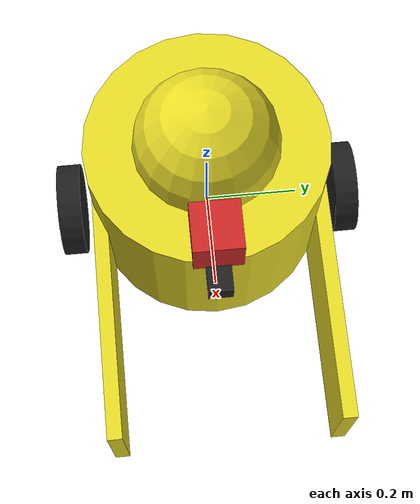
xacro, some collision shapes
<?xml version='1.0'?>

<robot name="robo" xmlns:xacro="http://www.ros.org/wiki/xacro">

  <xacro:include filename="$(find my_robot_urdf)/urdf/robo.gazebo" />

  <gazebo reference="left_wheel">
    <material>Gazebo/Black</material>
  </gazebo>

  <gazebo reference="right_wheel">
    <material>Gazebo/Black</material>
  </gazebo>

  <gazebo reference="camera">
    <material>Gazebo/Black</material>
  </gazebo>

  <gazebo reference="hokuyo">
    <material>Gazebo/Red</material>
  </gazebo>

  <gazebo reference="head">
    <material>Gazebo/Yellow</material>
  </gazebo>

  <gazebo reference="leftarm">
    <material>Gazebo/Grey</material>
  </gazebo>

  <gazebo reference="rightarm">
    <material>Gazebo/Grey</material>
  </gazebo>

  <gazebo reference="chassis">
    <material>Gazebo/Yellow</material>
  </gazebo>
  <link name="robot_footprint"></link>

  <joint name="robot_footprint_joint" type="fixed">
    <origin xyz="0 0 0" rpy="0 0 0" />
    <parent link="robot_footprint"/>
    <child link="chassis" />
  </joint>

  <joint name="camera_joint" type="fixed">
    <origin xyz="0.26 0 0.1" rpy="0 0 0" />
    <parent link="chassis"/>
    <child link="camera" />
    <axis xyz="0 1 0"/>
  </joint>

  <joint name="hokuyo_joint" type="fixed">
    <origin xyz="0.2 0 0.2" rpy="0 0 0" />
    <parent link="chassis"/>
    <child link="hokuyo" />
    <axis xyz="0 1 0"/>
  </joint>

  <joint type="continuous" name="left_wheel_hinge">
    <origin xyz="0 0.30 0" rpy="0 0 0" />
    <parent link="chassis"/>
    <child link="left_wheel" />
    <axis xyz="0 1 0" rpy="0 0 0" />
    <limit effort="10000" velocity="1000" />
    <dynamics damping="1.0" friction="1.0" />
  </joint>

  <joint type="continuous" name="right_wheel_hinge">
    <origin xyz="0 -0.30 0" rpy="0 0 0" />
    <parent link="chassis"/>
    <child link="right_wheel" />
    <axis xyz="0 1 0" rpy="0 0 0" />
    <limit effort="10000" velocity="1000" />
    <dynamics damping="1.0" friction="1.0" />
  </joint>
<link name="camera">
    <inertial>
      <mass value="0.1"/>
      <origin xyz="0 0 0" rpy="0 0 0"/>
      <inertia
        ixx="1e-6" ixy="0.0" ixz="0.0"
        iyy="1e-6" iyz="0.0"
        izz="1e-6"
      />
    </inertial>

    <collision>
      <origin xyz="0.01 0 0.15" rpy="0 0 0"/>
      <geometry>
        <box size="0.06 0.05 0.05"/>
      </geometry>
    </collision>

    <visual>
      <origin xyz="0.01 0 0.15" rpy="0 0 0"/>
      <geometry>
        <box size="0.06 0.05 0.05"/>
      </geometry>
    </visual>

  </link>

  <link name="hokuyo">
    <inertial>
      <mass value="1e-5"/>
      <origin xyz="0 0 0" rpy="0 0 0"/>
      <inertia
        ixx="1e-6" ixy="0.0" ixz="0.0"
        iyy="1e-6" iyz="0.0"
        izz="1e-6"
      />
    </inertial>

    <collision>
      <origin xyz="0 0 0.12" rpy="0 0 0"/>
      <geometry>
        <box size="0.1 0.1 0.1"/>
      </geometry>
    </collision>

    <visual>
      <origin xyz="0 0 0.12" rpy="0 0 0"/>
      <geometry>
        <mesh filename="package://my_robot_urdf/meshes/hokuyo.dae"/>
      </geometry>
    </visual>

  </link>

  <link name="left_wheel">
    <inertial>
      <mass value="5"/>
      <origin xyz="0 0 0" rpy="0 1.5707 1.5707"/>
      <inertia
        ixx="0.1" ixy="0.0" ixz="0.0"
        iyy="0.1" iyz="0.0"
        izz="0.1"
      />
    </inertial>

    <collision>
      <origin xyz="0 0 0" rpy="0 1.5707 1.5707"/>
      <geometry>
        <cylinder radius="0.1" length="0.05"/>
      </geometry>
    </collision>

    <visual>
      <origin xyz="0 0 0" rpy="0 1.5707 1.5707"/>
      <geometry>
        <cylinder radius="0.1" length="0.05"/>
      </geometry>
    </visual>

  </link>

  <link name="right_wheel">
    <inertial>
      <mass value="5"/>
      <origin xyz="0 0 0" rpy="0 1.5707 1.5707"/>
      <inertia
        ixx="0.1" ixy="0.0" ixz="0.0"
        iyy="0.1" iyz="0.0"
        izz="0.1"
      />
    </inertial>

    <collision>
      <origin xyz="0 0 0" rpy="0 1.5707 1.5707"/>
      <geometry>
        <cylinder radius="0.1" length="0.05"/>
      </geometry>
    </collision>

    <visual>
      <origin xyz="0 0 0" rpy="0 1.5707 1.5707"/>
      <geometry>
        <cylinder radius="0.1" length="0.05"/>
      </geometry>
    </visual>

  </link>

  <link name='chassis'>
    <pose>0 0 0.1 0 0 0</pose>

    <inertial>
      <mass value="15.0"/>
      <origin xyz="0.0 0 0" rpy=" 0 0 0"/>
      <inertia
          ixx="0.1" ixy="0" ixz="0"
          iyy="0.1" iyz="0"
          izz="0.1"
      />
    </inertial>

    <collision name='collision'>
      <origin xyz="0 0 0.12" rpy=" 0 0 0"/>
      <geometry>
        <cylinder length="0.35" radius="0.25"/>
      </geometry>
    </collision>

    <visual name='chassis_visual'>
      <origin xyz="0 0 0.12" rpy=" 0 0 0"/>
      <geometry>
       <cylinder length="0.35" radius="0.25"/>
      </geometry>
    </visual>

    <collision name="head">
      <origin xyz="0 0 0.3" rpy="0 0 0"/>
      <geometry>
        <sphere radius="0.15"/>
      </geometry>
    </collision>

    <visual name="head_visual">
      <origin xyz="0 0 0.3" rpy="0 0 0"/>
      <geometry>
        <sphere radius="0.15"/>
      </geometry>
    </visual>

    <collision name="leftarm">
      <origin xyz="0.3 0.23 0.06" rpy="0 0 0"/>
      <geometry>
        <box size="0.5 0.03 0.23"/>
      </geometry>
    </collision>

    <visual name='leftarm_visual'>
      <origin xyz="0.3 0.23 0.06" rpy="0 0 0"/>
      <geometry>
        <box size="0.5 0.03 0.23"/>
      </geometry>
    </visual>

    <collision name="rightarm">
      <origin xyz="0.3 -0.23 0.06" rpy="0 0 0"/>
      <geometry>
        <box size="0.5 0.03 0.23"/>
      </geometry>
    </collision>

    <visual name="rightarm_visual">
      <origin xyz="0.3 -0.23 0.06" rpy="0 0 0"/>
      <geometry>
        <box size="0.5 0.03 0.23"/>
      </geometry>
    </visual>

    <collision name='back_caster_collision'>
      <origin xyz="-0.15 0 -0.05" rpy=" 0 0 0"/>
      <geometry>
        <sphere radius="0.0499"/>
      </geometry>
    </collision>

    <visual name='back_caster_visual'>
      <origin xyz="-0.15 0 -0.05" rpy=" 0 0 0"/>
      <geometry>
        <sphere radius="0.05"/>
      </geometry>
    </visual>

    <collision name='front_caster_collision'>
      <origin xyz="0.15 0 -0.05" rpy=" 0 0 0"/>
      <geometry>
        <sphere radius="0.0499"/>
      </geometry>
    </collision>

    <visual name='front_caster_visual'>
      <origin xyz="0.15 0 -0.05" rpy=" 0 0 0"/>
      <geometry>
        <sphere radius="0.05"/>
      </geometry>
    </visual>

  </link>

</robot>
